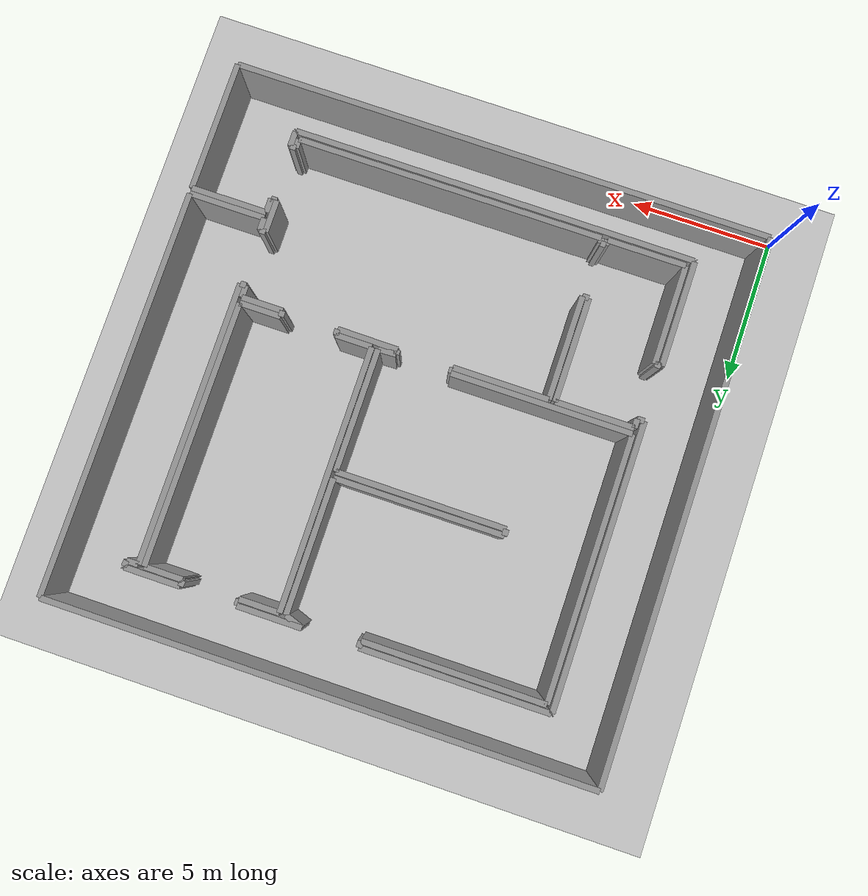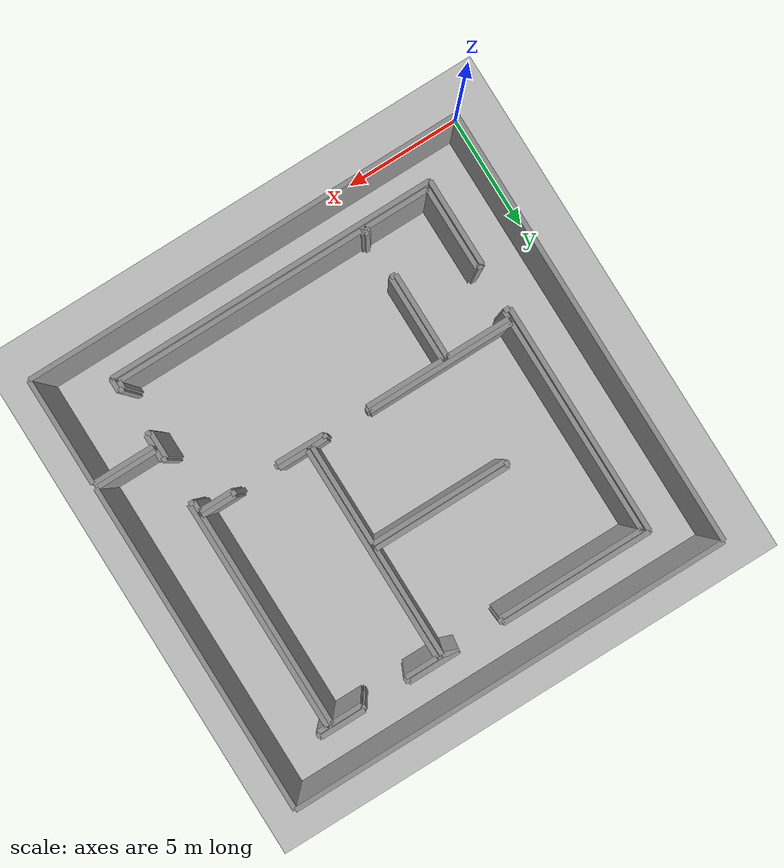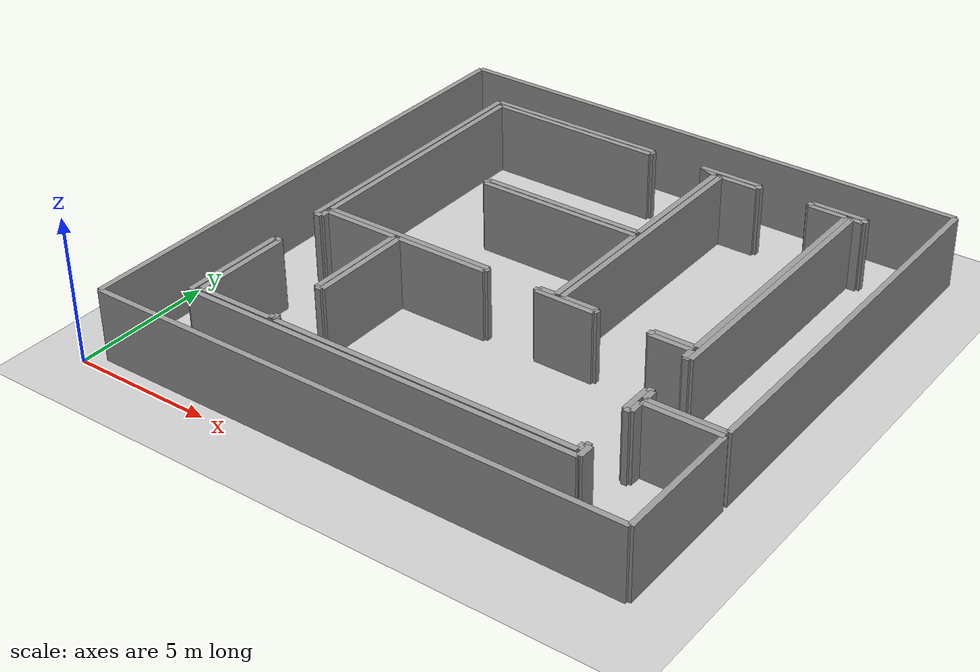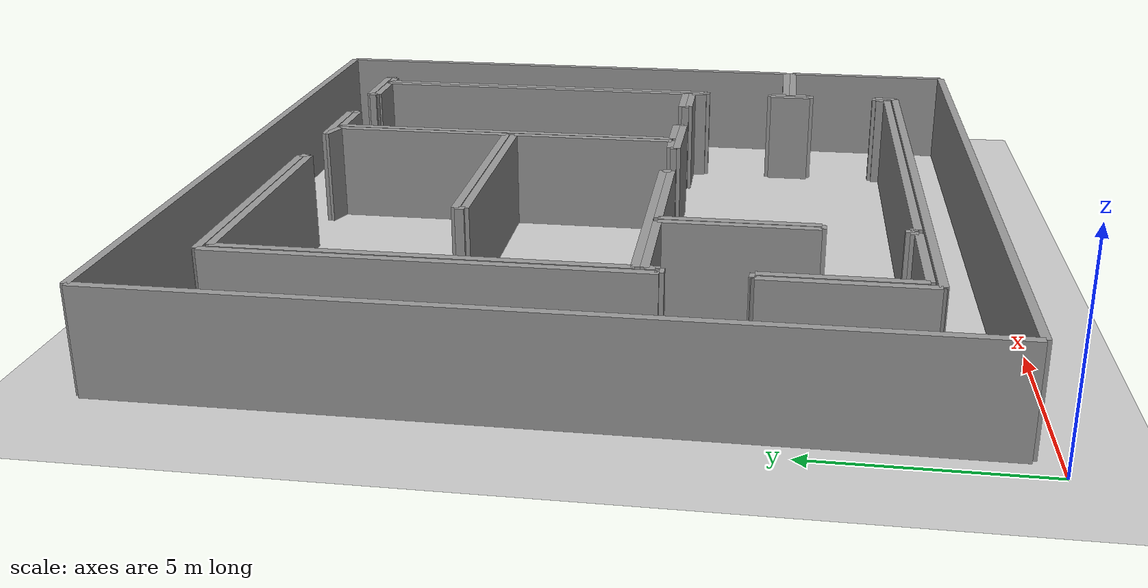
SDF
<?xml version='1.0'?>
        <sdf version='1.4'>
            <world name='1_wall'>
                <light name='sun' type='directional'>
                    <cast_shadows>1</cast_shadows>
                    <pose>0 0 10 0 -0 0</pose>
                    <diffuse>0.8 0.8 0.8 1</diffuse>
                    <specular>0.2 0.2 0.2 1</specular>
                    <attenuation>
                    <range>1000</range>
                    <constant>0.9</constant>
                    <linear>0.01</linear>
                    <quadratic>0.001</quadratic>
                    </attenuation>
                    <direction>-0.5 0.1 -0.9</direction>
                </light>
                <model name='ground_plane'>
                    <static>1</static>
                    <link name='link'>
                        <collision name='collision'>
                        <geometry>
                            <plane>
                                <normal>0 0 1</normal>
                                <size>1000 1000</size>
                            </plane>
                        </geometry>
                        <surface>
                            <friction>
                                <ode>
                                    <mu>100</mu>
                                    <mu2>50</mu2>
                                </ode>
                            </friction>
                            <bounce/>
                                <contact>
                                    <ode/>
                                </contact>
                        </surface>
                        <max_contacts>10</max_contacts>
                        </collision>
                    <visual name='visual'>
                        <cast_shadows>0</cast_shadows>
                        <geometry>
                            <plane>
                                <normal>0 0 1</normal>
                                <size>10000 10000</size>
                            </plane>
                            </geometry>
                                <material>
                                <script>
                                        <uri>file://media/materials/scripts/gazebo.material</uri>
                                        <name>Gazebo/Grey</name>
                                        </script>
                                    </material>
                    </visual>
                    <velocity_decay>
                        <linear>0</linear>
                        <angular>0</angular>
                    </velocity_decay>
                    <self_collide>0</self_collide>
                        <kinematic>0</kinematic>
                        <gravity>1</gravity>
                    </link>
                </model>
                <physics type='ode'>
                    <max_step_size>0.01</max_step_size>
                    <real_time_factor>1</real_time_factor>
                    <real_time_update_rate>100</real_time_update_rate>
                    <gravity>0 0 -9.8</gravity>
                </physics>
            <scene>
                <ambient>0.4 0.4 0.4 1</ambient>
                <background>0.7 0.7 0.7 1</background>
                <shadows>1</shadows>
            </scene>
    <model name='Wall_0'>
     <static>1</static>
    <link name='Wall_0'>
    <collision name='Wall_Collision_0'>
        <geometry>
          <box>
            <size>18.86 0.2 2.5</size>
          </box>
        </geometry>
        <pose>0 0 1.25 0 -0 0</pose>
      </collision>
      <visual name='Wall_Visual_0'>
        <pose>0 0 1.25 0 -0 0</pose>
        <geometry>
          <box>
            <size>18.86 0.2 2.5</size>
          </box>
        </geometry>
        <material>
          <script>
            <uri>file://media/materials/scripts/gazebo.material</uri>
            <name>Gazebo/Grey</name>
          </script>
        </material>
      </visual>
      <velocity_decay>
        <linear>0</linear>
        <angular>0</angular>
      </velocity_decay>
      <pose>9.99 0.56 0 0 0 3.14159265359</pose>
    </link>
     </model><model name='Wall_1'>
     <static>1</static>
    <link name='Wall_1'>
    <collision name='Wall_Collision_1'>
        <geometry>
          <box>
            <size>18.86 0.2 2.5</size>
          </box>
        </geometry>
        <pose>0 0 1.25 0 -0 0</pose>
      </collision>
      <visual name='Wall_Visual_1'>
        <pose>0 0 1.25 0 -0 0</pose>
        <geometry>
          <box>
            <size>18.86 0.2 2.5</size>
          </box>
        </geometry>
        <material>
          <script>
            <uri>file://media/materials/scripts/gazebo.material</uri>
            <name>Gazebo/Grey</name>
          </script>
        </material>
      </visual>
      <velocity_decay>
        <linear>0</linear>
        <angular>0</angular>
      </velocity_decay>
      <pose>0.56 9.99 0 0 0 1.57079632679</pose>
    </link>
     </model><model name='Wall_2'>
     <static>1</static>
    <link name='Wall_2'>
    <collision name='Wall_Collision_2'>
        <geometry>
          <box>
            <size>18.86 0.2 2.5</size>
          </box>
        </geometry>
        <pose>0 0 1.25 0 -0 0</pose>
      </collision>
      <visual name='Wall_Visual_2'>
        <pose>0 0 1.25 0 -0 0</pose>
        <geometry>
          <box>
            <size>18.86 0.2 2.5</size>
          </box>
        </geometry>
        <material>
          <script>
            <uri>file://media/materials/scripts/gazebo.material</uri>
            <name>Gazebo/Grey</name>
          </script>
        </material>
      </visual>
      <velocity_decay>
        <linear>0</linear>
        <angular>0</angular>
      </velocity_decay>
      <pose>9.99 19.42 0 0 0 0.0</pose>
    </link>
     </model><model name='Wall_3'>
     <static>1</static>
    <link name='Wall_3'>
    <collision name='Wall_Collision_3'>
        <geometry>
          <box>
            <size>14.1 0.2 2.5</size>
          </box>
        </geometry>
        <pose>0 0 1.25 0 -0 0</pose>
      </collision>
      <visual name='Wall_Visual_3'>
        <pose>0 0 1.25 0 -0 0</pose>
        <geometry>
          <box>
            <size>14.1 0.2 2.5</size>
          </box>
        </geometry>
        <material>
          <script>
            <uri>file://media/materials/scripts/gazebo.material</uri>
            <name>Gazebo/Grey</name>
          </script>
        </material>
      </visual>
      <velocity_decay>
        <linear>0</linear>
        <angular>0</angular>
      </velocity_decay>
      <pose>19.42 12.37 0 0 0 -1.57079632679</pose>
    </link>
     </model><model name='Wall_4'>
     <static>1</static>
    <link name='Wall_4'>
    <collision name='Wall_Collision_4'>
        <geometry>
          <box>
            <size>2.64 0.2 2.5</size>
          </box>
        </geometry>
        <pose>0 0 1.25 0 -0 0</pose>
      </collision>
      <visual name='Wall_Visual_4'>
        <pose>0 0 1.25 0 -0 0</pose>
        <geometry>
          <box>
            <size>2.64 0.2 2.5</size>
          </box>
        </geometry>
        <material>
          <script>
            <uri>file://media/materials/scripts/gazebo.material</uri>
            <name>Gazebo/Grey</name>
          </script>
        </material>
      </visual>
      <velocity_decay>
        <linear>0</linear>
        <angular>0</angular>
      </velocity_decay>
      <pose>18.1 5.32 0 0 0 3.14159265359</pose>
    </link>
     </model><model name='Wall_5'>
     <static>1</static>
    <link name='Wall_5'>
    <collision name='Wall_Collision_5'>
        <geometry>
          <box>
            <size>0.44 0.2 2.5</size>
          </box>
        </geometry>
        <pose>0 0 1.25 0 -0 0</pose>
      </collision>
      <visual name='Wall_Visual_5'>
        <pose>0 0 1.25 0 -0 0</pose>
        <geometry>
          <box>
            <size>0.44 0.2 2.5</size>
          </box>
        </geometry>
        <material>
          <script>
            <uri>file://media/materials/scripts/gazebo.material</uri>
            <name>Gazebo/Grey</name>
          </script>
        </material>
      </visual>
      <velocity_decay>
        <linear>0</linear>
        <angular>0</angular>
      </velocity_decay>
      <pose>16.78 5.54 0 0 0 1.57079632679</pose>
    </link>
     </model><model name='Wall_6'>
     <static>1</static>
    <link name='Wall_6'>
    <collision name='Wall_Collision_6'>
        <geometry>
          <box>
            <size>0.2 0.2 2.5</size>
          </box>
        </geometry>
        <pose>0 0 1.25 0 -0 0</pose>
      </collision>
      <visual name='Wall_Visual_6'>
        <pose>0 0 1.25 0 -0 0</pose>
        <geometry>
          <box>
            <size>0.2 0.2 2.5</size>
          </box>
        </geometry>
        <material>
          <script>
            <uri>file://media/materials/scripts/gazebo.material</uri>
            <name>Gazebo/Grey</name>
          </script>
        </material>
      </visual>
      <velocity_decay>
        <linear>0</linear>
        <angular>0</angular>
      </velocity_decay>
      <pose>16.68 5.76 0 0 0 3.14159265359</pose>
    </link>
     </model><model name='Wall_7'>
     <static>1</static>
    <link name='Wall_7'>
    <collision name='Wall_Collision_7'>
        <geometry>
          <box>
            <size>1.14 0.2 2.5</size>
          </box>
        </geometry>
        <pose>0 0 1.25 0 -0 0</pose>
      </collision>
      <visual name='Wall_Visual_7'>
        <pose>0 0 1.25 0 -0 0</pose>
        <geometry>
          <box>
            <size>1.14 0.2 2.5</size>
          </box>
        </geometry>
        <material>
          <script>
            <uri>file://media/materials/scripts/gazebo.material</uri>
            <name>Gazebo/Grey</name>
          </script>
        </material>
      </visual>
      <velocity_decay>
        <linear>0</linear>
        <angular>0</angular>
      </velocity_decay>
      <pose>16.58 5.19 0 0 0 -1.57079632679</pose>
    </link>
     </model><model name='Wall_8'>
     <static>1</static>
    <link name='Wall_8'>
    <collision name='Wall_Collision_8'>
        <geometry>
          <box>
            <size>0.2 0.2 2.5</size>
          </box>
        </geometry>
        <pose>0 0 1.25 0 -0 0</pose>
      </collision>
      <visual name='Wall_Visual_8'>
        <pose>0 0 1.25 0 -0 0</pose>
        <geometry>
          <box>
            <size>0.2 0.2 2.5</size>
          </box>
        </geometry>
        <material>
          <script>
            <uri>file://media/materials/scripts/gazebo.material</uri>
            <name>Gazebo/Grey</name>
          </script>
        </material>
      </visual>
      <velocity_decay>
        <linear>0</linear>
        <angular>0</angular>
      </velocity_decay>
      <pose>16.68 4.62 0 0 0 0.0</pose>
    </link>
     </model><model name='Wall_9'>
     <static>1</static>
    <link name='Wall_9'>
    <collision name='Wall_Collision_9'>
        <geometry>
          <box>
            <size>0.5 0.2 2.5</size>
          </box>
        </geometry>
        <pose>0 0 1.25 0 -0 0</pose>
      </collision>
      <visual name='Wall_Visual_9'>
        <pose>0 0 1.25 0 -0 0</pose>
        <geometry>
          <box>
            <size>0.5 0.2 2.5</size>
          </box>
        </geometry>
        <material>
          <script>
            <uri>file://media/materials/scripts/gazebo.material</uri>
            <name>Gazebo/Grey</name>
          </script>
        </material>
      </visual>
      <velocity_decay>
        <linear>0</linear>
        <angular>0</angular>
      </velocity_decay>
      <pose>16.78 4.87 0 0 0 1.57079632679</pose>
    </link>
     </model><model name='Wall_10'>
     <static>1</static>
    <link name='Wall_10'>
    <collision name='Wall_Collision_10'>
        <geometry>
          <box>
            <size>2.64 0.2 2.5</size>
          </box>
        </geometry>
        <pose>0 0 1.25 0 -0 0</pose>
      </collision>
      <visual name='Wall_Visual_10'>
        <pose>0 0 1.25 0 -0 0</pose>
        <geometry>
          <box>
            <size>2.64 0.2 2.5</size>
          </box>
        </geometry>
        <material>
          <script>
            <uri>file://media/materials/scripts/gazebo.material</uri>
            <name>Gazebo/Grey</name>
          </script>
        </material>
      </visual>
      <velocity_decay>
        <linear>0</linear>
        <angular>0</angular>
      </velocity_decay>
      <pose>18.1 5.12 0 0 0 0.0</pose>
    </link>
     </model><model name='Wall_11'>
     <static>1</static>
    <link name='Wall_11'>
    <collision name='Wall_Collision_11'>
        <geometry>
          <box>
            <size>4.56 0.2 2.5</size>
          </box>
        </geometry>
        <pose>0 0 1.25 0 -0 0</pose>
      </collision>
      <visual name='Wall_Visual_11'>
        <pose>0 0 1.25 0 -0 0</pose>
        <geometry>
          <box>
            <size>4.56 0.2 2.5</size>
          </box>
        </geometry>
        <material>
          <script>
            <uri>file://media/materials/scripts/gazebo.material</uri>
            <name>Gazebo/Grey</name>
          </script>
        </material>
      </visual>
      <velocity_decay>
        <linear>0</linear>
        <angular>0</angular>
      </velocity_decay>
      <pose>19.42 2.84 0 0 0 -1.57079632679</pose>
    </link>
     </model><model name='Wall_12'>
     <static>1</static>
    <link name='Wall_12'>
    <collision name='Wall_Collision_12'>
        <geometry>
          <box>
            <size>0.16 0.2 2.5</size>
          </box>
        </geometry>
        <pose>0 0 1.25 0 -0 0</pose>
      </collision>
      <visual name='Wall_Visual_12'>
        <pose>0 0 1.25 0 -0 0</pose>
        <geometry>
          <box>
            <size>0.16 0.2 2.5</size>
          </box>
        </geometry>
        <material>
          <script>
            <uri>file://media/materials/scripts/gazebo.material</uri>
            <name>Gazebo/Grey</name>
          </script>
        </material>
      </visual>
      <velocity_decay>
        <linear>0</linear>
        <angular>0</angular>
      </velocity_decay>
      <pose>11.12 8.2 0 0 0 -1.57079632679</pose>
    </link>
     </model><model name='Wall_13'>
     <static>1</static>
    <link name='Wall_13'>
    <collision name='Wall_Collision_13'>
        <geometry>
          <box>
            <size>2.10009523594 0.2 2.5</size>
          </box>
        </geometry>
        <pose>0 0 1.25 0 -0 0</pose>
      </collision>
      <visual name='Wall_Visual_13'>
        <pose>0 0 1.25 0 -0 0</pose>
        <geometry>
          <box>
            <size>2.10009523594 0.2 2.5</size>
          </box>
        </geometry>
        <material>
          <script>
            <uri>file://media/materials/scripts/gazebo.material</uri>
            <name>Gazebo/Grey</name>
          </script>
        </material>
      </visual>
      <velocity_decay>
        <linear>0</linear>
        <angular>0</angular>
      </velocity_decay>
      <pose>12.17 8.11 0 0 0 -0.00952352159361</pose>
    </link>
     </model><model name='Wall_14'>
     <static>1</static>
    <link name='Wall_14'>
    <collision name='Wall_Collision_14'>
        <geometry>
          <box>
            <size>0.2 0.2 2.5</size>
          </box>
        </geometry>
        <pose>0 0 1.25 0 -0 0</pose>
      </collision>
      <visual name='Wall_Visual_14'>
        <pose>0 0 1.25 0 -0 0</pose>
        <geometry>
          <box>
            <size>0.2 0.2 2.5</size>
          </box>
        </geometry>
        <material>
          <script>
            <uri>file://media/materials/scripts/gazebo.material</uri>
            <name>Gazebo/Grey</name>
          </script>
        </material>
      </visual>
      <velocity_decay>
        <linear>0</linear>
        <angular>0</angular>
      </velocity_decay>
      <pose>13.22 8.2 0 0 0 1.57079632679</pose>
    </link>
     </model><model name='Wall_15'>
     <static>1</static>
    <link name='Wall_15'>
    <collision name='Wall_Collision_15'>
        <geometry>
          <box>
            <size>1.26 0.2 2.5</size>
          </box>
        </geometry>
        <pose>0 0 1.25 0 -0 0</pose>
      </collision>
      <visual name='Wall_Visual_15'>
        <pose>0 0 1.25 0 -0 0</pose>
        <geometry>
          <box>
            <size>1.26 0.2 2.5</size>
          </box>
        </geometry>
        <material>
          <script>
            <uri>file://media/materials/scripts/gazebo.material</uri>
            <name>Gazebo/Grey</name>
          </script>
        </material>
      </visual>
      <velocity_decay>
        <linear>0</linear>
        <angular>0</angular>
      </velocity_decay>
      <pose>12.59 8.3 0 0 0 3.14159265359</pose>
    </link>
     </model><model name='Wall_16'>
     <static>1</static>
    <link name='Wall_16'>
    <collision name='Wall_Collision_16'>
        <geometry>
          <box>
            <size>9.12 0.2 2.5</size>
          </box>
        </geometry>
        <pose>0 0 1.25 0 -0 0</pose>
      </collision>
      <visual name='Wall_Visual_16'>
        <pose>0 0 1.25 0 -0 0</pose>
        <geometry>
          <box>
            <size>9.12 0.2 2.5</size>
          </box>
        </geometry>
        <material>
          <script>
            <uri>file://media/materials/scripts/gazebo.material</uri>
            <name>Gazebo/Grey</name>
          </script>
        </material>
      </visual>
      <velocity_decay>
        <linear>0</linear>
        <angular>0</angular>
      </velocity_decay>
      <pose>11.96 12.86 0 0 0 1.57079632679</pose>
    </link>
     </model><model name='Wall_17'>
     <static>1</static>
    <link name='Wall_17'>
    <collision name='Wall_Collision_17'>
        <geometry>
          <box>
            <size>1.38 0.2 2.5</size>
          </box>
        </geometry>
        <pose>0 0 1.25 0 -0 0</pose>
      </collision>
      <visual name='Wall_Visual_17'>
        <pose>0 0 1.25 0 -0 0</pose>
        <geometry>
          <box>
            <size>1.38 0.2 2.5</size>
          </box>
        </geometry>
        <material>
          <script>
            <uri>file://media/materials/scripts/gazebo.material</uri>
            <name>Gazebo/Grey</name>
          </script>
        </material>
      </visual>
      <velocity_decay>
        <linear>0</linear>
        <angular>0</angular>
      </velocity_decay>
      <pose>12.65 17.42 0 0 0 0.0</pose>
    </link>
     </model><model name='Wall_18'>
     <static>1</static>
    <link name='Wall_18'>
    <collision name='Wall_Collision_18'>
        <geometry>
          <box>
            <size>0.22 0.2 2.5</size>
          </box>
        </geometry>
        <pose>0 0 1.25 0 -0 0</pose>
      </collision>
      <visual name='Wall_Visual_18'>
        <pose>0 0 1.25 0 -0 0</pose>
        <geometry>
          <box>
            <size>0.22 0.2 2.5</size>
          </box>
        </geometry>
        <material>
          <script>
            <uri>file://media/materials/scripts/gazebo.material</uri>
            <name>Gazebo/Grey</name>
          </script>
        </material>
      </visual>
      <velocity_decay>
        <linear>0</linear>
        <angular>0</angular>
      </velocity_decay>
      <pose>13.34 17.53 0 0 0 1.57079632679</pose>
    </link>
     </model><model name='Wall_19'>
     <static>1</static>
    <link name='Wall_19'>
    <collision name='Wall_Collision_19'>
        <geometry>
          <box>
            <size>2.22 0.2 2.5</size>
          </box>
        </geometry>
        <pose>0 0 1.25 0 -0 0</pose>
      </collision>
      <visual name='Wall_Visual_19'>
        <pose>0 0 1.25 0 -0 0</pose>
        <geometry>
          <box>
            <size>2.22 0.2 2.5</size>
          </box>
        </geometry>
        <material>
          <script>
            <uri>file://media/materials/scripts/gazebo.material</uri>
            <name>Gazebo/Grey</name>
          </script>
        </material>
      </visual>
      <velocity_decay>
        <linear>0</linear>
        <angular>0</angular>
      </velocity_decay>
      <pose>12.23 17.64 0 0 0 3.14159265359</pose>
    </link>
     </model><model name='Wall_20'>
     <static>1</static>
    <link name='Wall_20'>
    <collision name='Wall_Collision_20'>
        <geometry>
          <box>
            <size>0.657875368136 0.2 2.5</size>
          </box>
        </geometry>
        <pose>0 0 1.25 0 -0 0</pose>
      </collision>
      <visual name='Wall_Visual_20'>
        <pose>0 0 1.25 0 -0 0</pose>
        <geometry>
          <box>
            <size>0.657875368136 0.2 2.5</size>
          </box>
        </geometry>
        <material>
          <script>
            <uri>file://media/materials/scripts/gazebo.material</uri>
            <name>Gazebo/Grey</name>
          </script>
        </material>
      </visual>
      <velocity_decay>
        <linear>0</linear>
        <angular>0</angular>
      </velocity_decay>
      <pose>11.43 17.53 0 0 0 -0.340978953496</pose>
    </link>
     </model><model name='Wall_21'>
     <static>1</static>
    <link name='Wall_21'>
    <collision name='Wall_Collision_21'>
        <geometry>
          <box>
            <size>4.64 0.2 2.5</size>
          </box>
        </geometry>
        <pose>0 0 1.25 0 -0 0</pose>
      </collision>
      <visual name='Wall_Visual_21'>
        <pose>0 0 1.25 0 -0 0</pose>
        <geometry>
          <box>
            <size>4.64 0.2 2.5</size>
          </box>
        </geometry>
        <material>
          <script>
            <uri>file://media/materials/scripts/gazebo.material</uri>
            <name>Gazebo/Grey</name>
          </script>
        </material>
      </visual>
      <velocity_decay>
        <linear>0</linear>
        <angular>0</angular>
      </velocity_decay>
      <pose>11.74 15.1 0 0 0 -1.57079632679</pose>
    </link>
     </model><model name='Wall_22'>
     <static>1</static>
    <link name='Wall_22'>
    <collision name='Wall_Collision_22'>
        <geometry>
          <box>
            <size>5.84 0.2 2.5</size>
          </box>
        </geometry>
        <pose>0 0 1.25 0 -0 0</pose>
      </collision>
      <visual name='Wall_Visual_22'>
        <pose>0 0 1.25 0 -0 0</pose>
        <geometry>
          <box>
            <size>5.84 0.2 2.5</size>
          </box>
        </geometry>
        <material>
          <script>
            <uri>file://media/materials/scripts/gazebo.material</uri>
            <name>Gazebo/Grey</name>
          </script>
        </material>
      </visual>
      <velocity_decay>
        <linear>0</linear>
        <angular>0</angular>
      </velocity_decay>
      <pose>8.82 12.78 0 0 0 3.14159265359</pose>
    </link>
     </model><model name='Wall_23'>
     <static>1</static>
    <link name='Wall_23'>
    <collision name='Wall_Collision_23'>
        <geometry>
          <box>
            <size>0.22 0.2 2.5</size>
          </box>
        </geometry>
        <pose>0 0 1.25 0 -0 0</pose>
      </collision>
      <visual name='Wall_Visual_23'>
        <pose>0 0 1.25 0 -0 0</pose>
        <geometry>
          <box>
            <size>0.22 0.2 2.5</size>
          </box>
        </geometry>
        <material>
          <script>
            <uri>file://media/materials/scripts/gazebo.material</uri>
            <name>Gazebo/Grey</name>
          </script>
        </material>
      </visual>
      <velocity_decay>
        <linear>0</linear>
        <angular>0</angular>
      </velocity_decay>
      <pose>5.9 12.67 0 0 0 -1.57079632679</pose>
    </link>
     </model><model name='Wall_24'>
     <static>1</static>
    <link name='Wall_24'>
    <collision name='Wall_Collision_24'>
        <geometry>
          <box>
            <size>5.84 0.2 2.5</size>
          </box>
        </geometry>
        <pose>0 0 1.25 0 -0 0</pose>
      </collision>
      <visual name='Wall_Visual_24'>
        <pose>0 0 1.25 0 -0 0</pose>
        <geometry>
          <box>
            <size>5.84 0.2 2.5</size>
          </box>
        </geometry>
        <material>
          <script>
            <uri>file://media/materials/scripts/gazebo.material</uri>
            <name>Gazebo/Grey</name>
          </script>
        </material>
      </visual>
      <velocity_decay>
        <linear>0</linear>
        <angular>0</angular>
      </velocity_decay>
      <pose>8.82 12.56 0 0 0 0.0</pose>
    </link>
     </model><model name='Wall_25'>
     <static>1</static>
    <link name='Wall_25'>
    <collision name='Wall_Collision_25'>
        <geometry>
          <box>
            <size>4.26 0.2 2.5</size>
          </box>
        </geometry>
        <pose>0 0 1.25 0 -0 0</pose>
      </collision>
      <visual name='Wall_Visual_25'>
        <pose>0 0 1.25 0 -0 0</pose>
        <geometry>
          <box>
            <size>4.26 0.2 2.5</size>
          </box>
        </geometry>
        <material>
          <script>
            <uri>file://media/materials/scripts/gazebo.material</uri>
            <name>Gazebo/Grey</name>
          </script>
        </material>
      </visual>
      <velocity_decay>
        <linear>0</linear>
        <angular>0</angular>
      </velocity_decay>
      <pose>11.74 10.43 0 0 0 -1.57079632679</pose>
    </link>
     </model><model name='Wall_26'>
     <static>1</static>
    <link name='Wall_26'>
    <collision name='Wall_Collision_26'>
        <geometry>
          <box>
            <size>0.620322496771 0.2 2.5</size>
          </box>
        </geometry>
        <pose>0 0 1.25 0 -0 0</pose>
      </collision>
      <visual name='Wall_Visual_26'>
        <pose>0 0 1.25 0 -0 0</pose>
        <geometry>
          <box>
            <size>0.620322496771 0.2 2.5</size>
          </box>
        </geometry>
        <material>
          <script>
            <uri>file://media/materials/scripts/gazebo.material</uri>
            <name>Gazebo/Grey</name>
          </script>
        </material>
      </visual>
      <velocity_decay>
        <linear>0</linear>
        <angular>0</angular>
      </velocity_decay>
      <pose>11.43 8.29 0 0 0 -3.10934577115</pose>
    </link>
     </model><model name='Wall_27'>
     <static>1</static>
    <link name='Wall_27'>
    <collision name='Wall_Collision_27'>
        <geometry>
          <box>
            <size>0.42 0.2 2.5</size>
          </box>
        </geometry>
        <pose>0 0 1.25 0 -0 0</pose>
      </collision>
      <visual name='Wall_Visual_27'>
        <pose>0 0 1.25 0 -0 0</pose>
        <geometry>
          <box>
            <size>0.42 0.2 2.5</size>
          </box>
        </geometry>
        <material>
          <script>
            <uri>file://media/materials/scripts/gazebo.material</uri>
            <name>Gazebo/Grey</name>
          </script>
        </material>
      </visual>
      <velocity_decay>
        <linear>0</linear>
        <angular>0</angular>
      </velocity_decay>
      <pose>16.58 7.89 0 0 0 -1.57079632679</pose>
    </link>
     </model><model name='Wall_28'>
     <static>1</static>
    <link name='Wall_28'>
    <collision name='Wall_Collision_28'>
        <geometry>
          <box>
            <size>0.2 0.2 2.5</size>
          </box>
        </geometry>
        <pose>0 0 1.25 0 -0 0</pose>
      </collision>
      <visual name='Wall_Visual_28'>
        <pose>0 0 1.25 0 -0 0</pose>
        <geometry>
          <box>
            <size>0.2 0.2 2.5</size>
          </box>
        </geometry>
        <material>
          <script>
            <uri>file://media/materials/scripts/gazebo.material</uri>
            <name>Gazebo/Grey</name>
          </script>
        </material>
      </visual>
      <velocity_decay>
        <linear>0</linear>
        <angular>0</angular>
      </velocity_decay>
      <pose>16.68 7.68 0 0 0 0.0</pose>
    </link>
     </model><model name='Wall_29'>
     <static>1</static>
    <link name='Wall_29'>
    <collision name='Wall_Collision_29'>
        <geometry>
          <box>
            <size>9.74 0.2 2.5</size>
          </box>
        </geometry>
        <pose>0 0 1.25 0 -0 0</pose>
      </collision>
      <visual name='Wall_Visual_29'>
        <pose>0 0 1.25 0 -0 0</pose>
        <geometry>
          <box>
            <size>9.74 0.2 2.5</size>
          </box>
        </geometry>
        <material>
          <script>
            <uri>file://media/materials/scripts/gazebo.material</uri>
            <name>Gazebo/Grey</name>
          </script>
        </material>
      </visual>
      <velocity_decay>
        <linear>0</linear>
        <angular>0</angular>
      </velocity_decay>
      <pose>16.78 12.55 0 0 0 1.57079632679</pose>
    </link>
     </model><model name='Wall_30'>
     <static>1</static>
    <link name='Wall_30'>
    <collision name='Wall_Collision_30'>
        <geometry>
          <box>
            <size>0.4 0.2 2.5</size>
          </box>
        </geometry>
        <pose>0 0 1.25 0 -0 0</pose>
      </collision>
      <visual name='Wall_Visual_30'>
        <pose>0 0 1.25 0 -0 0</pose>
        <geometry>
          <box>
            <size>0.4 0.2 2.5</size>
          </box>
        </geometry>
        <material>
          <script>
            <uri>file://media/materials/scripts/gazebo.material</uri>
            <name>Gazebo/Grey</name>
          </script>
        </material>
      </visual>
      <velocity_decay>
        <linear>0</linear>
        <angular>0</angular>
      </velocity_decay>
      <pose>16.98 17.42 0 0 0 0.0</pose>
    </link>
     </model><model name='Wall_31'>
     <static>1</static>
    <link name='Wall_31'>
    <collision name='Wall_Collision_31'>
        <geometry>
          <box>
            <size>0.200997512422 0.2 2.5</size>
          </box>
        </geometry>
        <pose>0 0 1.25 0 -0 0</pose>
      </collision>
      <visual name='Wall_Visual_31'>
        <pose>0 0 1.25 0 -0 0</pose>
        <geometry>
          <box>
            <size>0.200997512422 0.2 2.5</size>
          </box>
        </geometry>
        <material>
          <script>
            <uri>file://media/materials/scripts/gazebo.material</uri>
            <name>Gazebo/Grey</name>
          </script>
        </material>
      </visual>
      <velocity_decay>
        <linear>0</linear>
        <angular>0</angular>
      </velocity_decay>
      <pose>17.19 17.52 0 0 0 1.4711276743</pose>
    </link>
     </model><model name='Wall_32'>
     <static>1</static>
    <link name='Wall_32'>
    <collision name='Wall_Collision_32'>
        <geometry>
          <box>
            <size>0.0282842712475 0.2 2.5</size>
          </box>
        </geometry>
        <pose>0 0 1.25 0 -0 0</pose>
      </collision>
      <visual name='Wall_Visual_32'>
        <pose>0 0 1.25 0 -0 0</pose>
        <geometry>
          <box>
            <size>0.0282842712475 0.2 2.5</size>
          </box>
        </geometry>
        <material>
          <script>
            <uri>file://media/materials/scripts/gazebo.material</uri>
            <name>Gazebo/Grey</name>
          </script>
        </material>
      </visual>
      <velocity_decay>
        <linear>0</linear>
        <angular>0</angular>
      </velocity_decay>
      <pose>17.19 17.63 0 0 0 2.35619449019</pose>
    </link>
     </model><model name='Wall_33'>
     <static>1</static>
    <link name='Wall_33'>
    <collision name='Wall_Collision_33'>
        <geometry>
          <box>
            <size>1.92 0.2 2.5</size>
          </box>
        </geometry>
        <pose>0 0 1.25 0 -0 0</pose>
      </collision>
      <visual name='Wall_Visual_33'>
        <pose>0 0 1.25 0 -0 0</pose>
        <geometry>
          <box>
            <size>1.92 0.2 2.5</size>
          </box>
        </geometry>
        <material>
          <script>
            <uri>file://media/materials/scripts/gazebo.material</uri>
            <name>Gazebo/Grey</name>
          </script>
        </material>
      </visual>
      <velocity_decay>
        <linear>0</linear>
        <angular>0</angular>
      </velocity_decay>
      <pose>16.22 17.64 0 0 0 3.14159265359</pose>
    </link>
     </model><model name='Wall_34'>
     <static>1</static>
    <link name='Wall_34'>
    <collision name='Wall_Collision_34'>
        <geometry>
          <box>
            <size>0.200997512422 0.2 2.5</size>
          </box>
        </geometry>
        <pose>0 0 1.25 0 -0 0</pose>
      </collision>
      <visual name='Wall_Visual_34'>
        <pose>0 0 1.25 0 -0 0</pose>
        <geometry>
          <box>
            <size>0.200997512422 0.2 2.5</size>
          </box>
        </geometry>
        <material>
          <script>
            <uri>file://media/materials/scripts/gazebo.material</uri>
            <name>Gazebo/Grey</name>
          </script>
        </material>
      </visual>
      <velocity_decay>
        <linear>0</linear>
        <angular>0</angular>
      </velocity_decay>
      <pose>15.25 17.54 0 0 0 -1.67046497929</pose>
    </link>
     </model><model name='Wall_35'>
     <static>1</static>
    <link name='Wall_35'>
    <collision name='Wall_Collision_35'>
        <geometry>
          <box>
            <size>0.0282842712475 0.2 2.5</size>
          </box>
        </geometry>
        <pose>0 0 1.25 0 -0 0</pose>
      </collision>
      <visual name='Wall_Visual_35'>
        <pose>0 0 1.25 0 -0 0</pose>
        <geometry>
          <box>
            <size>0.0282842712475 0.2 2.5</size>
          </box>
        </geometry>
        <material>
          <script>
            <uri>file://media/materials/scripts/gazebo.material</uri>
            <name>Gazebo/Grey</name>
          </script>
        </material>
      </visual>
      <velocity_decay>
        <linear>0</linear>
        <angular>0</angular>
      </velocity_decay>
      <pose>15.25 17.43 0 0 0 -0.785398163397</pose>
    </link>
     </model><model name='Wall_36'>
     <static>1</static>
    <link name='Wall_36'>
    <collision name='Wall_Collision_36'>
        <geometry>
          <box>
            <size>1.32 0.2 2.5</size>
          </box>
        </geometry>
        <pose>0 0 1.25 0 -0 0</pose>
      </collision>
      <visual name='Wall_Visual_36'>
        <pose>0 0 1.25 0 -0 0</pose>
        <geometry>
          <box>
            <size>1.32 0.2 2.5</size>
          </box>
        </geometry>
        <material>
          <script>
            <uri>file://media/materials/scripts/gazebo.material</uri>
            <name>Gazebo/Grey</name>
          </script>
        </material>
      </visual>
      <velocity_decay>
        <linear>0</linear>
        <angular>0</angular>
      </velocity_decay>
      <pose>15.92 17.42 0 0 0 0.0</pose>
    </link>
     </model><model name='Wall_37'>
     <static>1</static>
    <link name='Wall_37'>
    <collision name='Wall_Collision_37'>
        <geometry>
          <box>
            <size>9.12 0.2 2.5</size>
          </box>
        </geometry>
        <pose>0 0 1.25 0 -0 0</pose>
      </collision>
      <visual name='Wall_Visual_37'>
        <pose>0 0 1.25 0 -0 0</pose>
        <geometry>
          <box>
            <size>9.12 0.2 2.5</size>
          </box>
        </geometry>
        <material>
          <script>
            <uri>file://media/materials/scripts/gazebo.material</uri>
            <name>Gazebo/Grey</name>
          </script>
        </material>
      </visual>
      <velocity_decay>
        <linear>0</linear>
        <angular>0</angular>
      </velocity_decay>
      <pose>16.58 12.86 0 0 0 -1.57079632679</pose>
    </link>
     </model><model name='Wall_38'>
     <static>1</static>
    <link name='Wall_38'>
    <collision name='Wall_Collision_38'>
        <geometry>
          <box>
            <size>1.44 0.2 2.5</size>
          </box>
        </geometry>
        <pose>0 0 1.25 0 -0 0</pose>
      </collision>
      <visual name='Wall_Visual_38'>
        <pose>0 0 1.25 0 -0 0</pose>
        <geometry>
          <box>
            <size>1.44 0.2 2.5</size>
          </box>
        </geometry>
        <material>
          <script>
            <uri>file://media/materials/scripts/gazebo.material</uri>
            <name>Gazebo/Grey</name>
          </script>
        </material>
      </visual>
      <velocity_decay>
        <linear>0</linear>
        <angular>0</angular>
      </velocity_decay>
      <pose>15.86 8.3 0 0 0 3.14159265359</pose>
    </link>
     </model><model name='Wall_39'>
     <static>1</static>
    <link name='Wall_39'>
    <collision name='Wall_Collision_39'>
        <geometry>
          <box>
            <size>0.2 0.2 2.5</size>
          </box>
        </geometry>
        <pose>0 0 1.25 0 -0 0</pose>
      </collision>
      <visual name='Wall_Visual_39'>
        <pose>0 0 1.25 0 -0 0</pose>
        <geometry>
          <box>
            <size>0.2 0.2 2.5</size>
          </box>
        </geometry>
        <material>
          <script>
            <uri>file://media/materials/scripts/gazebo.material</uri>
            <name>Gazebo/Grey</name>
          </script>
        </material>
      </visual>
      <velocity_decay>
        <linear>0</linear>
        <angular>0</angular>
      </velocity_decay>
      <pose>15.14 8.2 0 0 0 -1.57079632679</pose>
    </link>
     </model><model name='Wall_40'>
     <static>1</static>
    <link name='Wall_40'>
    <collision name='Wall_Collision_40'>
        <geometry>
          <box>
            <size>1.44 0.2 2.5</size>
          </box>
        </geometry>
        <pose>0 0 1.25 0 -0 0</pose>
      </collision>
      <visual name='Wall_Visual_40'>
        <pose>0 0 1.25 0 -0 0</pose>
        <geometry>
          <box>
            <size>1.44 0.2 2.5</size>
          </box>
        </geometry>
        <material>
          <script>
            <uri>file://media/materials/scripts/gazebo.material</uri>
            <name>Gazebo/Grey</name>
          </script>
        </material>
      </visual>
      <velocity_decay>
        <linear>0</linear>
        <angular>0</angular>
      </velocity_decay>
      <pose>15.86 8.1 0 0 0 0.0</pose>
    </link>
     </model><model name='Wall_41'>
     <static>1</static>
    <link name='Wall_41'>
    <collision name='Wall_Collision_41'>
        <geometry>
          <box>
            <size>3.64 0.2 2.5</size>
          </box>
        </geometry>
        <pose>0 0 1.25 0 -0 0</pose>
      </collision>
      <visual name='Wall_Visual_41'>
        <pose>0 0 1.25 0 -0 0</pose>
        <geometry>
          <box>
            <size>3.64 0.2 2.5</size>
          </box>
        </geometry>
        <material>
          <script>
            <uri>file://media/materials/scripts/gazebo.material</uri>
            <name>Gazebo/Grey</name>
          </script>
        </material>
      </visual>
      <velocity_decay>
        <linear>0</linear>
        <angular>0</angular>
      </velocity_decay>
      <pose>5.68 6.28 0 0 0 -1.57079632679</pose>
    </link>
     </model><model name='Wall_42'>
     <static>1</static>
    <link name='Wall_42'>
    <collision name='Wall_Collision_42'>
        <geometry>
          <box>
            <size>0.22 0.2 2.5</size>
          </box>
        </geometry>
        <pose>0 0 1.25 0 -0 0</pose>
      </collision>
      <visual name='Wall_Visual_42'>
        <pose>0 0 1.25 0 -0 0</pose>
        <geometry>
          <box>
            <size>0.22 0.2 2.5</size>
          </box>
        </geometry>
        <material>
          <script>
            <uri>file://media/materials/scripts/gazebo.material</uri>
            <name>Gazebo/Grey</name>
          </script>
        </material>
      </visual>
      <velocity_decay>
        <linear>0</linear>
        <angular>0</angular>
      </velocity_decay>
      <pose>5.79 4.46 0 0 0 0.0</pose>
    </link>
     </model><model name='Wall_43'>
     <static>1</static>
    <link name='Wall_43'>
    <collision name='Wall_Collision_43'>
        <geometry>
          <box>
            <size>3.64 0.2 2.5</size>
          </box>
        </geometry>
        <pose>0 0 1.25 0 -0 0</pose>
      </collision>
      <visual name='Wall_Visual_43'>
        <pose>0 0 1.25 0 -0 0</pose>
        <geometry>
          <box>
            <size>3.64 0.2 2.5</size>
          </box>
        </geometry>
        <material>
          <script>
            <uri>file://media/materials/scripts/gazebo.material</uri>
            <name>Gazebo/Grey</name>
          </script>
        </material>
      </visual>
      <velocity_decay>
        <linear>0</linear>
        <angular>0</angular>
      </velocity_decay>
      <pose>5.9 6.28 0 0 0 1.57079632679</pose>
    </link>
     </model><model name='Wall_44'>
     <static>1</static>
    <link name='Wall_44'>
    <collision name='Wall_Collision_44'>
        <geometry>
          <box>
            <size>3.32 0.2 2.5</size>
          </box>
        </geometry>
        <pose>0 0 1.25 0 -0 0</pose>
      </collision>
      <visual name='Wall_Visual_44'>
        <pose>0 0 1.25 0 -0 0</pose>
        <geometry>
          <box>
            <size>3.32 0.2 2.5</size>
          </box>
        </geometry>
        <material>
          <script>
            <uri>file://media/materials/scripts/gazebo.material</uri>
            <name>Gazebo/Grey</name>
          </script>
        </material>
      </visual>
      <velocity_decay>
        <linear>0</linear>
        <angular>0</angular>
      </velocity_decay>
      <pose>7.56 8.1 0 0 0 0.0</pose>
    </link>
     </model><model name='Wall_45'>
     <static>1</static>
    <link name='Wall_45'>
    <collision name='Wall_Collision_45'>
        <geometry>
          <box>
            <size>0.2 0.2 2.5</size>
          </box>
        </geometry>
        <pose>0 0 1.25 0 -0 0</pose>
      </collision>
      <visual name='Wall_Visual_45'>
        <pose>0 0 1.25 0 -0 0</pose>
        <geometry>
          <box>
            <size>0.2 0.2 2.5</size>
          </box>
        </geometry>
        <material>
          <script>
            <uri>file://media/materials/scripts/gazebo.material</uri>
            <name>Gazebo/Grey</name>
          </script>
        </material>
      </visual>
      <velocity_decay>
        <linear>0</linear>
        <angular>0</angular>
      </velocity_decay>
      <pose>9.22 8.2 0 0 0 1.57079632679</pose>
    </link>
     </model><model name='Wall_46'>
     <static>1</static>
    <link name='Wall_46'>
    <collision name='Wall_Collision_46'>
        <geometry>
          <box>
            <size>6.26 0.2 2.5</size>
          </box>
        </geometry>
        <pose>0 0 1.25 0 -0 0</pose>
      </collision>
      <visual name='Wall_Visual_46'>
        <pose>0 0 1.25 0 -0 0</pose>
        <geometry>
          <box>
            <size>6.26 0.2 2.5</size>
          </box>
        </geometry>
        <material>
          <script>
            <uri>file://media/materials/scripts/gazebo.material</uri>
            <name>Gazebo/Grey</name>
          </script>
        </material>
      </visual>
      <velocity_decay>
        <linear>0</linear>
        <angular>0</angular>
      </velocity_decay>
      <pose>6.09 8.3 0 0 0 3.14159265359</pose>
    </link>
     </model><model name='Wall_47'>
     <static>1</static>
    <link name='Wall_47'>
    <collision name='Wall_Collision_47'>
        <geometry>
          <box>
            <size>9.12 0.2 2.5</size>
          </box>
        </geometry>
        <pose>0 0 1.25 0 -0 0</pose>
      </collision>
      <visual name='Wall_Visual_47'>
        <pose>0 0 1.25 0 -0 0</pose>
        <geometry>
          <box>
            <size>9.12 0.2 2.5</size>
          </box>
        </geometry>
        <material>
          <script>
            <uri>file://media/materials/scripts/gazebo.material</uri>
            <name>Gazebo/Grey</name>
          </script>
        </material>
      </visual>
      <velocity_decay>
        <linear>0</linear>
        <angular>0</angular>
      </velocity_decay>
      <pose>2.96 12.86 0 0 0 1.57079632679</pose>
    </link>
     </model><model name='Wall_48'>
     <static>1</static>
    <link name='Wall_48'>
    <collision name='Wall_Collision_48'>
        <geometry>
          <box>
            <size>6.24 0.2 2.5</size>
          </box>
        </geometry>
        <pose>0 0 1.25 0 -0 0</pose>
      </collision>
      <visual name='Wall_Visual_48'>
        <pose>0 0 1.25 0 -0 0</pose>
        <geometry>
          <box>
            <size>6.24 0.2 2.5</size>
          </box>
        </geometry>
        <material>
          <script>
            <uri>file://media/materials/scripts/gazebo.material</uri>
            <name>Gazebo/Grey</name>
          </script>
        </material>
      </visual>
      <velocity_decay>
        <linear>0</linear>
        <angular>0</angular>
      </velocity_decay>
      <pose>6.08 17.42 0 0 0 0.0</pose>
    </link>
     </model><model name='Wall_49'>
     <static>1</static>
    <link name='Wall_49'>
    <collision name='Wall_Collision_49'>
        <geometry>
          <box>
            <size>0.22 0.2 2.5</size>
          </box>
        </geometry>
        <pose>0 0 1.25 0 -0 0</pose>
      </collision>
      <visual name='Wall_Visual_49'>
        <pose>0 0 1.25 0 -0 0</pose>
        <geometry>
          <box>
            <size>0.22 0.2 2.5</size>
          </box>
        </geometry>
        <material>
          <script>
            <uri>file://media/materials/scripts/gazebo.material</uri>
            <name>Gazebo/Grey</name>
          </script>
        </material>
      </visual>
      <velocity_decay>
        <linear>0</linear>
        <angular>0</angular>
      </velocity_decay>
      <pose>9.2 17.53 0 0 0 1.57079632679</pose>
    </link>
     </model><model name='Wall_50'>
     <static>1</static>
    <link name='Wall_50'>
    <collision name='Wall_Collision_50'>
        <geometry>
          <box>
            <size>6.46 0.2 2.5</size>
          </box>
        </geometry>
        <pose>0 0 1.25 0 -0 0</pose>
      </collision>
      <visual name='Wall_Visual_50'>
        <pose>0 0 1.25 0 -0 0</pose>
        <geometry>
          <box>
            <size>6.46 0.2 2.5</size>
          </box>
        </geometry>
        <material>
          <script>
            <uri>file://media/materials/scripts/gazebo.material</uri>
            <name>Gazebo/Grey</name>
          </script>
        </material>
      </visual>
      <velocity_decay>
        <linear>0</linear>
        <angular>0</angular>
      </velocity_decay>
      <pose>5.97 17.64 0 0 0 3.14159265359</pose>
    </link>
     </model><model name='Wall_51'>
     <static>1</static>
    <link name='Wall_51'>
    <collision name='Wall_Collision_51'>
        <geometry>
          <box>
            <size>0.0282842712475 0.2 2.5</size>
          </box>
        </geometry>
        <pose>0 0 1.25 0 -0 0</pose>
      </collision>
      <visual name='Wall_Visual_51'>
        <pose>0 0 1.25 0 -0 0</pose>
        <geometry>
          <box>
            <size>0.0282842712475 0.2 2.5</size>
          </box>
        </geometry>
        <material>
          <script>
            <uri>file://media/materials/scripts/gazebo.material</uri>
            <name>Gazebo/Grey</name>
          </script>
        </material>
      </visual>
      <velocity_decay>
        <linear>0</linear>
        <angular>0</angular>
      </velocity_decay>
      <pose>2.73 17.63 0 0 0 -2.35619449019</pose>
    </link>
     </model><model name='Wall_52'>
     <static>1</static>
    <link name='Wall_52'>
    <collision name='Wall_Collision_52'>
        <geometry>
          <box>
            <size>9.84 0.2 2.5</size>
          </box>
        </geometry>
        <pose>0 0 1.25 0 -0 0</pose>
      </collision>
      <visual name='Wall_Visual_52'>
        <pose>0 0 1.25 0 -0 0</pose>
        <geometry>
          <box>
            <size>9.84 0.2 2.5</size>
          </box>
        </geometry>
        <material>
          <script>
            <uri>file://media/materials/scripts/gazebo.material</uri>
            <name>Gazebo/Grey</name>
          </script>
        </material>
      </visual>
      <velocity_decay>
        <linear>0</linear>
        <angular>0</angular>
      </velocity_decay>
      <pose>2.72 12.7 0 0 0 -1.57079632679</pose>
    </link>
     </model><model name='Wall_53'>
     <static>1</static>
    <link name='Wall_53'>
    <collision name='Wall_Collision_53'>
        <geometry>
          <box>
            <size>0.24 0.2 2.5</size>
          </box>
        </geometry>
        <pose>0 0 1.25 0 -0 0</pose>
      </collision>
      <visual name='Wall_Visual_53'>
        <pose>0 0 1.25 0 -0 0</pose>
        <geometry>
          <box>
            <size>0.24 0.2 2.5</size>
          </box>
        </geometry>
        <material>
          <script>
            <uri>file://media/materials/scripts/gazebo.material</uri>
            <name>Gazebo/Grey</name>
          </script>
        </material>
      </visual>
      <velocity_decay>
        <linear>0</linear>
        <angular>0</angular>
      </velocity_decay>
      <pose>2.84 7.78 0 0 0 0.0</pose>
    </link>
     </model><model name='Wall_54'>
     <static>1</static>
    <link name='Wall_54'>
    <collision name='Wall_Collision_54'>
        <geometry>
          <box>
            <size>0.32 0.2 2.5</size>
          </box>
        </geometry>
        <pose>0 0 1.25 0 -0 0</pose>
      </collision>
      <visual name='Wall_Visual_54'>
        <pose>0 0 1.25 0 -0 0</pose>
        <geometry>
          <box>
            <size>0.32 0.2 2.5</size>
          </box>
        </geometry>
        <material>
          <script>
            <uri>file://media/materials/scripts/gazebo.material</uri>
            <name>Gazebo/Grey</name>
          </script>
        </material>
      </visual>
      <velocity_decay>
        <linear>0</linear>
        <angular>0</angular>
      </velocity_decay>
      <pose>2.96 7.94 0 0 0 1.57079632679</pose>
    </link>
     </model><model name='Wall_55'>
     <static>1</static>
    <link name='Wall_55'>
    <collision name='Wall_Collision_55'>
        <geometry>
          <box>
            <size>2.72 0.2 2.5</size>
          </box>
        </geometry>
        <pose>0 0 1.25 0 -0 0</pose>
      </collision>
      <visual name='Wall_Visual_55'>
        <pose>0 0 1.25 0 -0 0</pose>
        <geometry>
          <box>
            <size>2.72 0.2 2.5</size>
          </box>
        </geometry>
        <material>
          <script>
            <uri>file://media/materials/scripts/gazebo.material</uri>
            <name>Gazebo/Grey</name>
          </script>
        </material>
      </visual>
      <velocity_decay>
        <linear>0</linear>
        <angular>0</angular>
      </velocity_decay>
      <pose>4.32 8.1 0 0 0 0.0</pose>
    </link>
     </model><model name='Wall_56'>
     <static>1</static>
    <link name='Wall_56'>
    <collision name='Wall_Collision_56'>
        <geometry>
          <box>
            <size>3.7 0.2 2.5</size>
          </box>
        </geometry>
        <pose>0 0 1.25 0 -0 0</pose>
      </collision>
      <visual name='Wall_Visual_56'>
        <pose>0 0 1.25 0 -0 0</pose>
        <geometry>
          <box>
            <size>3.7 0.2 2.5</size>
          </box>
        </geometry>
        <material>
          <script>
            <uri>file://media/materials/scripts/gazebo.material</uri>
            <name>Gazebo/Grey</name>
          </script>
        </material>
      </visual>
      <velocity_decay>
        <linear>0</linear>
        <angular>0</angular>
      </velocity_decay>
      <pose>2.72 4.01 0 0 0 -1.57079632679</pose>
    </link>
     </model><model name='Wall_57'>
     <static>1</static>
    <link name='Wall_57'>
    <collision name='Wall_Collision_57'>
        <geometry>
          <box>
            <size>0.0282842712475 0.2 2.5</size>
          </box>
        </geometry>
        <pose>0 0 1.25 0 -0 0</pose>
      </collision>
      <visual name='Wall_Visual_57'>
        <pose>0 0 1.25 0 -0 0</pose>
        <geometry>
          <box>
            <size>0.0282842712475 0.2 2.5</size>
          </box>
        </geometry>
        <material>
          <script>
            <uri>file://media/materials/scripts/gazebo.material</uri>
            <name>Gazebo/Grey</name>
          </script>
        </material>
      </visual>
      <velocity_decay>
        <linear>0</linear>
        <angular>0</angular>
      </velocity_decay>
      <pose>2.73 2.15 0 0 0 -0.785398163397</pose>
    </link>
     </model><model name='Wall_58'>
     <static>1</static>
    <link name='Wall_58'>
    <collision name='Wall_Collision_58'>
        <geometry>
          <box>
            <size>14.02 0.2 2.5</size>
          </box>
        </geometry>
        <pose>0 0 1.25 0 -0 0</pose>
      </collision>
      <visual name='Wall_Visual_58'>
        <pose>0 0 1.25 0 -0 0</pose>
        <geometry>
          <box>
            <size>14.02 0.2 2.5</size>
          </box>
        </geometry>
        <material>
          <script>
            <uri>file://media/materials/scripts/gazebo.material</uri>
            <name>Gazebo/Grey</name>
          </script>
        </material>
      </visual>
      <velocity_decay>
        <linear>0</linear>
        <angular>0</angular>
      </velocity_decay>
      <pose>9.75 2.14 0 0 0 0.0</pose>
    </link>
     </model><model name='Wall_59'>
     <static>1</static>
    <link name='Wall_59'>
    <collision name='Wall_Collision_59'>
        <geometry>
          <box>
            <size>0.0282842712475 0.2 2.5</size>
          </box>
        </geometry>
        <pose>0 0 1.25 0 -0 0</pose>
      </collision>
      <visual name='Wall_Visual_59'>
        <pose>0 0 1.25 0 -0 0</pose>
        <geometry>
          <box>
            <size>0.0282842712475 0.2 2.5</size>
          </box>
        </geometry>
        <material>
          <script>
            <uri>file://media/materials/scripts/gazebo.material</uri>
            <name>Gazebo/Grey</name>
          </script>
        </material>
      </visual>
      <velocity_decay>
        <linear>0</linear>
        <angular>0</angular>
      </velocity_decay>
      <pose>16.77 2.15 0 0 0 0.785398163397</pose>
    </link>
     </model><model name='Wall_60'>
     <static>1</static>
    <link name='Wall_60'>
    <collision name='Wall_Collision_60'>
        <geometry>
          <box>
            <size>0.54 0.2 2.5</size>
          </box>
        </geometry>
        <pose>0 0 1.25 0 -0 0</pose>
      </collision>
      <visual name='Wall_Visual_60'>
        <pose>0 0 1.25 0 -0 0</pose>
        <geometry>
          <box>
            <size>0.54 0.2 2.5</size>
          </box>
        </geometry>
        <material>
          <script>
            <uri>file://media/materials/scripts/gazebo.material</uri>
            <name>Gazebo/Grey</name>
          </script>
        </material>
      </visual>
      <velocity_decay>
        <linear>0</linear>
        <angular>0</angular>
      </velocity_decay>
      <pose>16.78 2.43 0 0 0 1.57079632679</pose>
    </link>
     </model><model name='Wall_61'>
     <static>1</static>
    <link name='Wall_61'>
    <collision name='Wall_Collision_61'>
        <geometry>
          <box>
            <size>0.2 0.2 2.5</size>
          </box>
        </geometry>
        <pose>0 0 1.25 0 -0 0</pose>
      </collision>
      <visual name='Wall_Visual_61'>
        <pose>0 0 1.25 0 -0 0</pose>
        <geometry>
          <box>
            <size>0.2 0.2 2.5</size>
          </box>
        </geometry>
        <material>
          <script>
            <uri>file://media/materials/scripts/gazebo.material</uri>
            <name>Gazebo/Grey</name>
          </script>
        </material>
      </visual>
      <velocity_decay>
        <linear>0</linear>
        <angular>0</angular>
      </velocity_decay>
      <pose>16.68 2.7 0 0 0 3.14159265359</pose>
    </link>
     </model><model name='Wall_62'>
     <static>1</static>
    <link name='Wall_62'>
    <collision name='Wall_Collision_62'>
        <geometry>
          <box>
            <size>0.32 0.2 2.5</size>
          </box>
        </geometry>
        <pose>0 0 1.25 0 -0 0</pose>
      </collision>
      <visual name='Wall_Visual_62'>
        <pose>0 0 1.25 0 -0 0</pose>
        <geometry>
          <box>
            <size>0.32 0.2 2.5</size>
          </box>
        </geometry>
        <material>
          <script>
            <uri>file://media/materials/scripts/gazebo.material</uri>
            <name>Gazebo/Grey</name>
          </script>
        </material>
      </visual>
      <velocity_decay>
        <linear>0</linear>
        <angular>0</angular>
      </velocity_decay>
      <pose>16.58 2.54 0 0 0 -1.57079632679</pose>
    </link>
     </model><model name='Wall_63'>
     <static>1</static>
    <link name='Wall_63'>
    <collision name='Wall_Collision_63'>
        <geometry>
          <box>
            <size>10.68 0.2 2.5</size>
          </box>
        </geometry>
        <pose>0 0 1.25 0 -0 0</pose>
      </collision>
      <visual name='Wall_Visual_63'>
        <pose>0 0 1.25 0 -0 0</pose>
        <geometry>
          <box>
            <size>10.68 0.2 2.5</size>
          </box>
        </geometry>
        <material>
          <script>
            <uri>file://media/materials/scripts/gazebo.material</uri>
            <name>Gazebo/Grey</name>
          </script>
        </material>
      </visual>
      <velocity_decay>
        <linear>0</linear>
        <angular>0</angular>
      </velocity_decay>
      <pose>11.24 2.38 0 0 0 3.14159265359</pose>
    </link>
     </model><model name='Wall_64'>
     <static>1</static>
    <link name='Wall_64'>
    <collision name='Wall_Collision_64'>
        <geometry>
          <box>
            <size>0.181107702763 0.2 2.5</size>
          </box>
        </geometry>
        <pose>0 0 1.25 0 -0 0</pose>
      </collision>
      <visual name='Wall_Visual_64'>
        <pose>0 0 1.25 0 -0 0</pose>
        <geometry>
          <box>
            <size>0.181107702763 0.2 2.5</size>
          </box>
        </geometry>
        <material>
          <script>
            <uri>file://media/materials/scripts/gazebo.material</uri>
            <name>Gazebo/Grey</name>
          </script>
        </material>
      </visual>
      <velocity_decay>
        <linear>0</linear>
        <angular>0</angular>
      </velocity_decay>
      <pose>5.89 2.47 0 0 0 1.68145354797</pose>
    </link>
     </model><model name='Wall_65'>
     <static>1</static>
    <link name='Wall_65'>
    <collision name='Wall_Collision_65'>
        <geometry>
          <box>
            <size>0.18 0.2 2.5</size>
          </box>
        </geometry>
        <pose>0 0 1.25 0 -0 0</pose>
      </collision>
      <visual name='Wall_Visual_65'>
        <pose>0 0 1.25 0 -0 0</pose>
        <geometry>
          <box>
            <size>0.18 0.2 2.5</size>
          </box>
        </geometry>
        <material>
          <script>
            <uri>file://media/materials/scripts/gazebo.material</uri>
            <name>Gazebo/Grey</name>
          </script>
        </material>
      </visual>
      <velocity_decay>
        <linear>0</linear>
        <angular>0</angular>
      </velocity_decay>
      <pose>5.79 2.56 0 0 0 3.14159265359</pose>
    </link>
     </model><model name='Wall_66'>
     <static>1</static>
    <link name='Wall_66'>
    <collision name='Wall_Collision_66'>
        <geometry>
          <box>
            <size>0.181107702763 0.2 2.5</size>
          </box>
        </geometry>
        <pose>0 0 1.25 0 -0 0</pose>
      </collision>
      <visual name='Wall_Visual_66'>
        <pose>0 0 1.25 0 -0 0</pose>
        <geometry>
          <box>
            <size>0.181107702763 0.2 2.5</size>
          </box>
        </geometry>
        <material>
          <script>
            <uri>file://media/materials/scripts/gazebo.material</uri>
            <name>Gazebo/Grey</name>
          </script>
        </material>
      </visual>
      <velocity_decay>
        <linear>0</linear>
        <angular>0</angular>
      </velocity_decay>
      <pose>5.69 2.47 0 0 0 -1.68145354797</pose>
    </link>
     </model><model name='Wall_67'>
     <static>1</static>
    <link name='Wall_67'>
    <collision name='Wall_Collision_67'>
        <geometry>
          <box>
            <size>2.72 0.2 2.5</size>
          </box>
        </geometry>
        <pose>0 0 1.25 0 -0 0</pose>
      </collision>
      <visual name='Wall_Visual_67'>
        <pose>0 0 1.25 0 -0 0</pose>
        <geometry>
          <box>
            <size>2.72 0.2 2.5</size>
          </box>
        </geometry>
        <material>
          <script>
            <uri>file://media/materials/scripts/gazebo.material</uri>
            <name>Gazebo/Grey</name>
          </script>
        </material>
      </visual>
      <velocity_decay>
        <linear>0</linear>
        <angular>0</angular>
      </velocity_decay>
      <pose>4.32 2.38 0 0 0 3.14159265359</pose>
    </link>
     </model><model name='Wall_68'>
     <static>1</static>
    <link name='Wall_68'>
    <collision name='Wall_Collision_68'>
        <geometry>
          <box>
            <size>3.48 0.2 2.5</size>
          </box>
        </geometry>
        <pose>0 0 1.25 0 -0 0</pose>
      </collision>
      <visual name='Wall_Visual_68'>
        <pose>0 0 1.25 0 -0 0</pose>
        <geometry>
          <box>
            <size>3.48 0.2 2.5</size>
          </box>
        </geometry>
        <material>
          <script>
            <uri>file://media/materials/scripts/gazebo.material</uri>
            <name>Gazebo/Grey</name>
          </script>
        </material>
      </visual>
      <velocity_decay>
        <linear>0</linear>
        <angular>0</angular>
      </velocity_decay>
      <pose>2.96 4.12 0 0 0 1.57079632679</pose>
    </link>
     </model><model name='Wall_69'>
     <static>1</static>
    <link name='Wall_69'>
    <collision name='Wall_Collision_69'>
        <geometry>
          <box>
            <size>0.220907220344 0.2 2.5</size>
          </box>
        </geometry>
        <pose>0 0 1.25 0 -0 0</pose>
      </collision>
      <visual name='Wall_Visual_69'>
        <pose>0 0 1.25 0 -0 0</pose>
        <geometry>
          <box>
            <size>0.220907220344 0.2 2.5</size>
          </box>
        </geometry>
        <material>
          <script>
            <uri>file://media/materials/scripts/gazebo.material</uri>
            <name>Gazebo/Grey</name>
          </script>
        </material>
      </visual>
      <velocity_decay>
        <linear>0</linear>
        <angular>0</angular>
      </velocity_decay>
      <pose>2.85 5.87 0 0 0 3.05093276639</pose>
    </link>
     </model><model name='Wall_70'>
     <static>1</static>
    <link name='Wall_70'>
    <collision name='Wall_Collision_70'>
        <geometry>
          <box>
            <size>0.0282842712475 0.2 2.5</size>
          </box>
        </geometry>
        <pose>0 0 1.25 0 -0 0</pose>
      </collision>
      <visual name='Wall_Visual_70'>
        <pose>0 0 1.25 0 -0 0</pose>
        <geometry>
          <box>
            <size>0.0282842712475 0.2 2.5</size>
          </box>
        </geometry>
        <material>
          <script>
            <uri>file://media/materials/scripts/gazebo.material</uri>
            <name>Gazebo/Grey</name>
          </script>
        </material>
      </visual>
      <velocity_decay>
        <linear>0</linear>
        <angular>0</angular>
      </velocity_decay>
      <pose>2.73 5.87 0 0 0 -2.35619449019</pose>
    </link>
     </model></world>
        </sdf>
